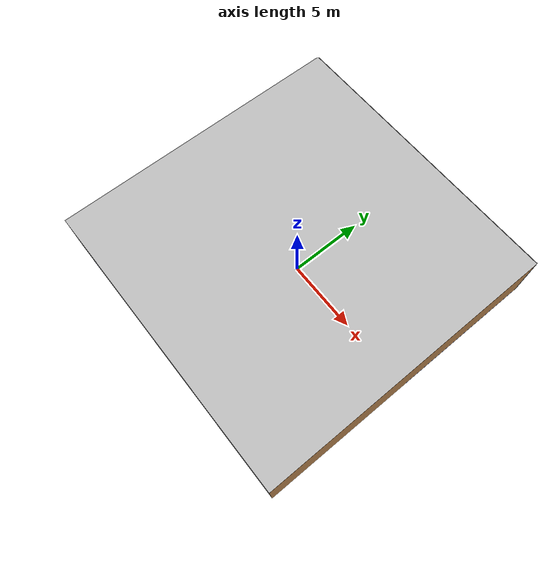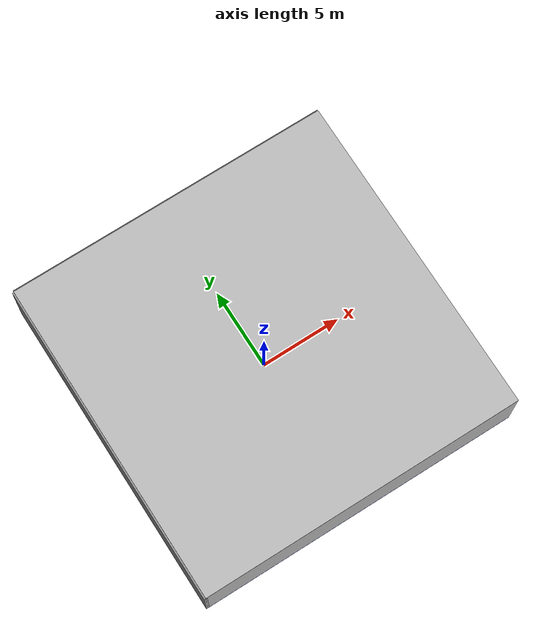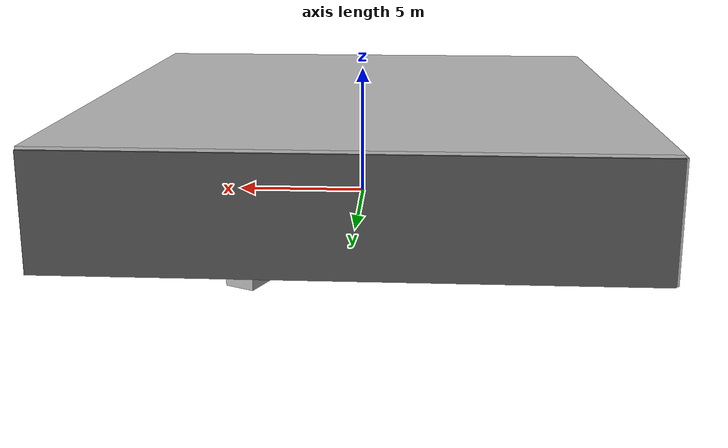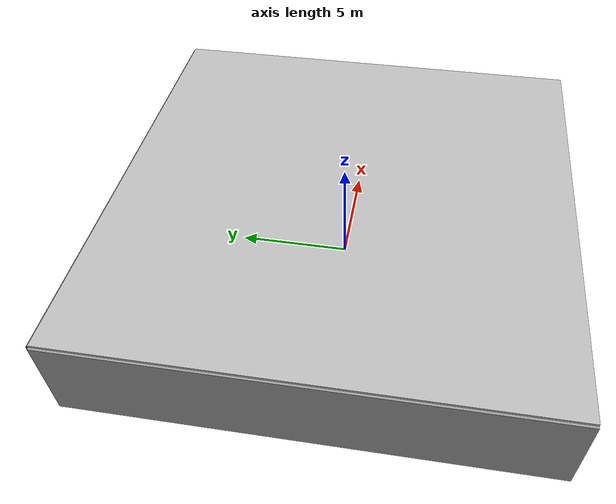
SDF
<sdf version="1.4">
 <world name="default">
  <physics type="ode">
   <max_step_size>0.001</max_step_size>
   <real_time_factor>1</real_time_factor>
   <real_time_update_rate>1000</real_time_update_rate>
   <gravity>0 0 -9.8</gravity>
  </physics>
  <scene><ambient>0.4 0.4 0.4 1</ambient><background>0.7 0.7 0.7 1</background><shadows>1</shadows></scene>
  <model name="Surrounding">
   <static>1</static>
   <link name="Ceiling">
    <collision name="Ceiling_Collision"><geometry><box><size>20 20 0.1</size></box></geometry></collision>
    <visual name="Ceiling_Visual">
     <geometry><box><size>20 20 0.1</size></box></geometry>
     <material>
      <script><uri>file://media/materials/scripts/gazebo.material</uri><name>Gazebo/LightOn</name></script>
     </material>
    </visual>
    <pose>0 0 4.05 0 0 0</pose>
   </link>
   <link name="Wall_South">
    <collision name="Wall_South_Collision">
     <geometry><box><size>20 0 4</size></box></geometry>
     <pose>0 0 2 0 -0 0</pose>
    </collision>
    <visual name="Wall_South_Visual">
     <pose>0 0 2 0 -0 0</pose>
     <geometry><box><size>20 0 4</size></box></geometry>
     <material>
      <script><uri>file://media/materials/scripts/gazebo.material</uri><name>Gazebo/PioneerBody</name></script>
     </material>
    </visual>
    <velocity_decay><linear>0</linear><angular>0</angular></velocity_decay>
    <pose>0 -10 0 0 -0 0</pose>
   </link>
   <link name="Wall_East">
    <collision name="Wall_21_Collision">
     <geometry><box><size>20 0 4</size></box></geometry>
     <pose>0 0 2 0 -0 0</pose>
    </collision>
    <visual name="Wall_21_Visual">
     <pose>0 0 2 0 -0 0</pose>
     <geometry><box><size>20 0 4</size></box></geometry>
     <material>
      <script><uri>file://media/materials/scripts/gazebo.material</uri><name>Gazebo/WoodFloor</name></script>
     </material>
    </visual>
    <velocity_decay><linear>0</linear><angular>0</angular></velocity_decay>
    <pose>10 0 0 0 -0 1.5708</pose>
   </link>
   <link name="Wall_North">
    <collision name="Wall_22_Collision">
     <geometry><box><size>20 0.2 4</size></box></geometry>
     <pose>0 0 2 0 -0 0</pose>
    </collision>
    <visual name="Wall_22_Visual">
     <pose>0 0 2 0 -0 0</pose>
     <geometry><box><size>20 0.2 4</size></box></geometry>
     <material>
      <script><uri>file://media/materials/scripts/gazebo.material</uri><name>Gazebo/DarkGrey</name></script>
     </material>
    </visual>
    <velocity_decay><linear>0</linear><angular>0</angular></velocity_decay>
    <pose>0 10 0 0 -0 0</pose>
   </link>
   <link name="Wall_West">
    <collision name="Wall_23_Collision">
     <geometry><box><size>20 0.2 4</size></box></geometry>
     <pose>0 0 2 0 -0 0</pose>
    </collision>
    <visual name="Wall_23_Visual">
     <pose>0 0 2 0 -0 0</pose>
     <geometry><box><size>20 0.2 4</size></box></geometry>
     <material>
      <script><uri>file://media/materials/scripts/gazebo.material</uri><name>Gazebo/Grey</name></script>
     </material>
    </visual>
    <velocity_decay><linear>0</linear><angular>0</angular></velocity_decay>
    <pose>-10 0 0 0 0 -1.5708</pose>
   </link>
   <link name="Ground_link">
    <collision name="collision">
     <pose>0 0 .05 0 -0 0</pose>
     <geometry><box><size>20 20 0.1</size></box></geometry>
    </collision>
    <visual name="visual">
     <pose>0 0 .05 0 -0 0</pose>
     <geometry><box><size>20 20 0.1</size></box></geometry>
     <material>
      <script><uri>file://media/materials/scripts/gazebo.material</uri><name>Gazebo/BlueGlow</name></script>
     </material>
    </visual>
   </link>
   <static>1</static>
  </model>
  <spherical_coordinates>
   <surface_model>EARTH_WGS84</surface_model>
   <latitude_deg>0</latitude_deg>
   <longitude_deg>0</longitude_deg>
   <elevation>0</elevation>
   <heading_deg>0</heading_deg>
  </spherical_coordinates>
  <light name="lightball_0" type="diffuse">
   <diffuse>0.8 0.8 0.8 1</diffuse>
   <specular>0.2 0.2 0.2 1</specular>
   <attenuation>
    <range>100</range>
    <constant>0.7</constant>
    <linear>0.01</linear>
    <quadratic>0.001</quadratic>
   </attenuation>
   <direction>-0.5 0.1 -0.9</direction>
   <pose>-3.0184488154 9.03135759927 2.9664902049 0 0 0</pose>
  </light>
  <light name="lightball_1" type="diffuse">
   <diffuse>0.8 0.8 0.8 1</diffuse>
   <specular>0.2 0.2 0.2 1</specular>
   <attenuation>
    <range>100</range>
    <constant>0.7</constant>
    <linear>0.01</linear>
    <quadratic>0.001</quadratic>
   </attenuation>
   <direction>-0.5 0.1 -0.9</direction>
   <pose>5.95924864484 -9.35271558392 3.76880888442 0 0 0</pose>
  </light>
  <light name="lightball_2" type="diffuse">
   <diffuse>0.8 0.8 0.8 1</diffuse>
   <specular>0.2 0.2 0.2 1</specular>
   <attenuation>
    <range>100</range>
    <constant>0.7</constant>
    <linear>0.01</linear>
    <quadratic>0.001</quadratic>
   </attenuation>
   <direction>-0.5 0.1 -0.9</direction>
   <pose>8.04980268052 3.82382396168 1.84983867926 0 0 0</pose>
  </light>
  <light name="lightball_3" type="diffuse">
   <diffuse>0.8 0.8 0.8 1</diffuse>
   <specular>0.2 0.2 0.2 1</specular>
   <attenuation>
    <range>100</range>
    <constant>0.7</constant>
    <linear>0.01</linear>
    <quadratic>0.001</quadratic>
   </attenuation>
   <direction>-0.5 0.1 -0.9</direction>
   <pose>6.29013860307 7.38245873191 2.61406359816 0 0 0</pose>
  </light>
  <light name="lightball_4" type="diffuse">
   <diffuse>0.8 0.8 0.8 1</diffuse>
   <specular>0.2 0.2 0.2 1</specular>
   <attenuation>
    <range>100</range>
    <constant>0.7</constant>
    <linear>0.01</linear>
    <quadratic>0.001</quadratic>
   </attenuation>
   <direction>-0.5 0.1 -0.9</direction>
   <pose>0.463916372183 -8.786740344 3.46500360237 0 0 0</pose>
  </light>
  <light name="lightball_5" type="diffuse">
   <diffuse>0.8 0.8 0.8 1</diffuse>
   <specular>0.2 0.2 0.2 1</specular>
   <attenuation>
    <range>100</range>
    <constant>0.7</constant>
    <linear>0.01</linear>
    <quadratic>0.001</quadratic>
   </attenuation>
   <direction>-0.5 0.1 -0.9</direction>
   <pose>-3.6358327823 2.52415549203 3.83644867239 0 0 0</pose>
  </light>
  <light name="lightball_6" type="diffuse">
   <diffuse>0.8 0.8 0.8 1</diffuse>
   <specular>0.2 0.2 0.2 1</specular>
   <attenuation>
    <range>100</range>
    <constant>0.7</constant>
    <linear>0.01</linear>
    <quadratic>0.001</quadratic>
   </attenuation>
   <direction>-0.5 0.1 -0.9</direction>
   <pose>5.59287193845 -2.81909752126 2.79670781761 0 0 0</pose>
  </light>
  <include><uri>model://table</uri><pose>-7.50882350397 6.92555094627 0 0 0 1.34325278868</pose></include>
  <include><uri>model://table</uri><pose>-0.976143277766 8.57553390966 0 0 0 1.82461229068</pose></include>
  <include><uri>model://table</uri><pose>1.56713397181 2.14724468029 0 0 0 0.0545711980265</pose></include>
  <include>
   <uri>model://textured_shapes</uri>
   <pose>2.5198338246 7.73510178428 0 0 0 2.71476137915</pose>
  </include>
  <include>
   <uri>model://robocup_3Dsim_goal</uri>
   <pose>6.85576094212 8.53190671886 0 0 0 1.39650448919</pose>
  </include>
 </world>
</sdf>

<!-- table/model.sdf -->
<sdf version="1.5">
  <model name="table">
    <static>true</static>
    <link name="link">
      <collision name="surface">
        <pose>0 0 1.0 0 0 0</pose>
        <geometry>
          <box>
            <size>1.5 0.8 0.03</size>
          </box>
        </geometry>
        <surface>
          <friction>
            <ode>
              <mu>0.6</mu>
              <mu2>0.6</mu2>
            </ode>
          </friction>
        </surface>
      </collision>
      <visual name="visual1">
        <pose>0 0 1.0 0 0 0</pose>
        <geometry>
          <box>
            <size>1.5 0.8 0.03</size>
          </box>
        </geometry>
        <material>
          <script>
            <uri>model://media/materials/scripts/gazebo.material</uri>
            <name>Gazebo/Wood</name>
          </script>
        </material>
      </visual>
      <collision name="front_left_leg">
        <pose>0.68 0.38 0.5 0 0 0</pose>
        <geometry>
          <cylinder>
            <radius>0.02</radius>
            <length>1.0</length>
          </cylinder>
        </geometry>
      </collision>
      <visual name="front_left_leg">
        <pose>0.68 0.38 0.5 0 0 0</pose>
        <geometry>
          <cylinder>
            <radius>0.02</radius>
            <length>1.0</length>
          </cylinder>
        </geometry>
        <material>
          <script>
            <uri>model://media/materials/scripts/gazebo.material</uri>
            <name>Gazebo/Grey</name>
          </script>
        </material>
      </visual>
      <collision name="front_right_leg">
        <pose>0.68 -0.38 0.5 0 0 0</pose>
        <geometry>
          <cylinder>
            <radius>0.02</radius>
            <length>1.0</length>
          </cylinder>
        </geometry>
      </collision>
      <visual name="front_right_leg">
        <pose>0.68 -0.38 0.5 0 0 0</pose>
        <geometry>
          <cylinder>
            <radius>0.02</radius>
            <length>1.0</length>
          </cylinder>
        </geometry>
        <material>
          <script>
            <uri>model://media/materials/scripts/gazebo.material</uri>
            <name>Gazebo/Grey</name>
          </script>
        </material>
      </visual>
      <collision name="back_right_leg">
        <pose>-0.68 -0.38 0.5 0 0 0</pose>
        <geometry>
          <cylinder>
            <radius>0.02</radius>
            <length>1.0</length>
          </cylinder>
        </geometry>
      </collision>
      <visual name="back_right_leg">
        <pose>-0.68 -0.38 0.5 0 0 0</pose>
        <geometry>
          <cylinder>
            <radius>0.02</radius>
            <length>1.0</length>
          </cylinder>
        </geometry>
        <material>
          <script>
            <uri>model://media/materials/scripts/gazebo.material</uri>
            <name>Gazebo/Grey</name>
          </script>
        </material>
      </visual>
      <collision name="back_left_leg">
        <pose>-0.68 0.38 0.5 0 0 0</pose>
        <geometry>
          <cylinder>
            <radius>0.02</radius>
            <length>1.0</length>
          </cylinder>
        </geometry>
      </collision>
      <visual name="back_left_leg">
        <pose>-0.68 0.38 0.5 0 0 0</pose>
        <geometry>
          <cylinder>
            <radius>0.02</radius>
            <length>1.0</length>
          </cylinder>
        </geometry>
        <material>
          <script>
            <uri>model://media/materials/scripts/gazebo.material</uri>
            <name>Gazebo/Grey</name>
          </script>
        </material>
      </visual>
    </link>
  </model>
</sdf>

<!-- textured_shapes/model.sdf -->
<sdf version="1.6">
  <model name="textured_shapes">
    <pose>0 0 0.5 0 0 0</pose>
    <link name="box">
      <pose>0 -1.5 0 0 0 0</pose>
      <collision name="collision">
        <geometry>
          <box>
            <size>1 1 1</size>
          </box>
        </geometry>
      </collision>
      <visual name="visual">
        <geometry>
          <box>
            <size>1 1 1</size>
          </box>
        </geometry>
        <material>
          <script>
            <uri>model://../model_source/models/textured_shapes/materials/scripts</uri>
            <uri>model://../model_source/models/textured_shapes/materials/textures</uri>
            <name>TexturedShape/Squares</name>
          </script>
        </material>
      </visual>
    </link>
    <link name="sphere">
      <collision name="collision">
        <geometry>
          <sphere>
            <radius>0.5</radius>
          </sphere>
        </geometry>
      </collision>
      <visual name="visual">
        <geometry>
          <sphere>
            <radius>0.5</radius>
          </sphere>
        </geometry>
        <material>
          <script>
            <uri>model://../model_source/models/textured_shapes/materials/scripts</uri>
            <uri>model://../model_source/models/textured_shapes/materials/textures</uri>
            <name>TexturedShape/Squares</name>
          </script>
        </material>
      </visual>
    </link>
    <link name="cylinder">
      <pose>0 1.5 0 0 0 0</pose>
      <collision name="collision">
        <geometry>
          <cylinder>
            <radius>0.5</radius>
            <length>1</length>
          </cylinder>
        </geometry>
      </collision>
      <visual name="visual">
        <geometry>
          <cylinder>
            <radius>0.5</radius>
            <length>1</length>
          </cylinder>
        </geometry>
        <material>
          <script>
            <uri>model://../model_source/models/textured_shapes/materials/scripts</uri>
            <uri>model://../model_source/models/textured_shapes/materials/textures</uri>
            <name>TexturedShape/Squares</name>
          </script>
        </material>
      </visual>
    </link>
  </model>
</sdf>

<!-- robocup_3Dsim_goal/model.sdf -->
<sdf version="1.5">
  <model name="robocup_3d_goal">
    <static>true</static>
    <link name="left_post">
      <pose>0 1.05 0.45 0 0 0</pose>
      <collision name="collision">
        <geometry>
          <cylinder>
            <radius>0.05</radius>
            <length>0.9</length>
          </cylinder>
        </geometry>
      </collision>
      <visual name="visual">
        <geometry>
          <cylinder>
            <radius>0.05</radius>
            <length>0.9</length>
          </cylinder>
        </geometry>
        <material>
          <script>
            <uri>file://media/materials/scripts/gazebo.material</uri>
            <name>Gazebo/ZincYellow</name>
          </script>
        </material>
      </visual>
    </link>
    <link name="left_support_horiz_lower">
      <pose>0.30 1.05 0.01 0 0 0</pose>
      <collision name="collision">
        <geometry>
          <box>
            <size>0.50 0.02 0.02</size>
          </box>
        </geometry>
      </collision>
      <visual name="visual">
        <geometry>
          <box>
            <size>0.50 0.02 0.02</size>
          </box>
        </geometry>
        <material>
          <script>
            <uri>file://media/materials/scripts/gazebo.material</uri>
            <name>Gazebo/White</name>
          </script>
        </material>
      </visual>
    </link>
    <link name="left_support_horiz_upper">
      <pose>0.30 1.05 0.79 0 0 0</pose>
      <collision name="collision">
        <geometry>
          <box>
            <size>0.50 0.02 0.02</size>
          </box>
        </geometry>
      </collision>
      <visual name="visual">
        <geometry>
          <box>
            <size>0.50 0.02 0.02</size>
          </box>
        </geometry>
        <material>
          <script>
            <uri>file://media/materials/scripts/gazebo.material</uri>
            <name>Gazebo/White</name>
          </script>
        </material>
      </visual>
    </link>
    <link name="left_support_vertical">
      <pose>0.56 1.05 0.4 0 1.5708 0</pose>
      <collision name="collision">
        <geometry>
          <box>
            <size>0.80 0.02 0.02</size>
          </box>
        </geometry>
      </collision>
      <visual name="visual">
        <geometry>
          <box>
            <size>0.80 0.02 0.02</size>
          </box>
        </geometry>
        <material>
          <script>
            <uri>file://media/materials/scripts/gazebo.material</uri>
            <name>Gazebo/White</name>
          </script>
        </material>
      </visual>
    </link>
    <link name="right_support_horiz_lower">
      <pose>0.30 -1.05 0.01 0 0 0</pose>
      <collision name="collision">
        <geometry>
          <box>
            <size>0.50 0.02 0.02</size>
          </box>
        </geometry>
      </collision>
      <visual name="visual">
        <geometry>
          <box>
            <size>0.50 0.02 0.02</size>
          </box>
        </geometry>
        <material>
          <script>
            <uri>file://media/materials/scripts/gazebo.material</uri>
            <name>Gazebo/White</name>
          </script>
        </material>
      </visual>
    </link>
    <link name="right_support_horiz_upper">
      <pose>0.30 -1.05 0.79 0 0 0</pose>
      <collision name="collision">
        <geometry>
          <box>
            <size>0.50 0.02 0.02</size>
          </box>
        </geometry>
      </collision>
      <visual name="visual">
        <geometry>
          <box>
            <size>0.50 0.02 0.02</size>
          </box>
        </geometry>
        <material>
          <script>
            <uri>file://media/materials/scripts/gazebo.material</uri>
            <name>Gazebo/White</name>
          </script>
        </material>
      </visual>
    </link>
    <link name="right_support_vertical">
      <pose>0.56 -1.05 0.4 0 1.5708 0</pose>
      <collision name="collision">
        <geometry>
          <box>
            <size>0.80 0.02 0.02</size>
          </box>
        </geometry>
      </collision>
      <visual name="visual">
        <geometry>
          <box>
            <size>0.80 0.02 0.02</size>
          </box>
        </geometry>
        <material>
          <script>
            <uri>file://media/materials/scripts/gazebo.material</uri>
            <name>Gazebo/White</name>
          </script>
        </material>
      </visual>
    </link>
    <link name="center_support_horiz_lower">
      <pose>0.56 0 0.01 0 1.5708 0</pose>
      <collision name="collision">
        <geometry>
          <box>
            <size>0.02 2.08 0.02</size>
          </box>
        </geometry>
      </collision>
      <visual name="visual">
        <geometry>
          <box>
            <size>0.02 2.08 0.02</size>
          </box>
        </geometry>
        <material>
          <script>
            <uri>file://media/materials/scripts/gazebo.material</uri>
            <name>Gazebo/White</name>
          </script>
        </material>
      </visual>
    </link>
    <link name="center_support_horiz_upper">
      <pose>0.56 0 0.79 0 1.5708 0</pose>
      <collision name="collision">
        <geometry>
          <box>
            <size>0.02 2.08 0.02</size>
          </box>
        </geometry>
      </collision>
      <visual name="visual">
        <geometry>
          <box>
            <size>0.02 2.08 0.02</size>
          </box>
        </geometry>
        <material>
          <script>
            <uri>file://media/materials/scripts/gazebo.material</uri>
            <name>Gazebo/White</name>
          </script>
        </material>
      </visual>
    </link>
    <link name="right_post">
      <pose>0 -1.05 0.45 0 0 0</pose>
      <collision name="collision">
        <geometry>
          <cylinder>
            <radius>0.05</radius>
            <length>0.9</length>
          </cylinder>
        </geometry>
      </collision>
      <visual name="visual">
        <geometry>
          <cylinder>
            <radius>0.05</radius>
            <length>0.9</length>
          </cylinder>
        </geometry>
        <material>
          <script>
            <uri>file://media/materials/scripts/gazebo.material</uri>
            <name>Gazebo/ZincYellow</name>
          </script>
        </material>
      </visual>
    </link>
    <link name="crossbar">
      <pose>0 0 0.85 1.57 1.57 0</pose>
      <collision name="collision">
        <geometry>
          <cylinder>
            <radius>0.05</radius>
            <length>2.0</length>
          </cylinder>
        </geometry>
      </collision>
      <visual name="visual">
        <geometry>
          <cylinder>
            <radius>0.05</radius>
            <length>2.0</length>
          </cylinder>
        </geometry>
        <material>
          <script>
            <uri>file://media/materials/scripts/gazebo.material</uri>
            <name>Gazebo/ZincYellow</name>
          </script>
        </material>
      </visual>
    </link>
    <link name="center_net">
      <pose>0.56 0 0.40 0 0 0</pose>
      <collision name="collision">
        <geometry>
          <box>
            <size>0.01 2.1 0.80</size>
          </box>
        </geometry>
      </collision>
      <visual name="visual">
        <geometry>
          <box>
            <size>0.01 2.1 0.80</size>
          </box>
        </geometry>
        <material>
          <script>
            <uri>model://../model_source/models/robocup09_spl_field/materials/scripts/</uri>
            <uri>model://../model_source/models/robocup09_spl_field/materials/textures/</uri>
            <name>RoboCup/Net</name>
          </script>
        </material>
      </visual>
    </link>
    <link name="left_net">
      <pose>0.30 1.05 0.40 0 0 0</pose>
      <collision name="collision">
        <geometry>
          <box>
            <size>0.50 0.01 0.76</size>
          </box>
        </geometry>
      </collision>
      <visual name="visual">
        <geometry>
          <box>
            <size>0.50 0.01 0.76</size>
          </box>
        </geometry>
        <material>
          <script>
            <uri>model://../model_source/models/robocup09_spl_field/materials/scripts/</uri>
            <uri>model://../model_source/models/robocup09_spl_field/materials/textures/</uri>
            <name>RoboCup/Net</name>
          </script>
        </material>
      </visual>
    </link>
    <link name="right_net">
      <pose>0.30 -1.05 0.40 0 0 0</pose>
      <collision name="collision">
        <geometry>
          <box>
            <size>0.50 0.01 0.76</size>
          </box>
        </geometry>
      </collision>
      <visual name="visual">
        <geometry>
          <box>
            <size>0.50 0.01 0.76</size>
          </box>
        </geometry>
        <material>
          <script>
            <uri>model://../model_source/models/robocup09_spl_field/materials/scripts/</uri>
            <uri>model://../model_source/models/robocup09_spl_field/materials/textures/</uri>
            <name>RoboCup/Net</name>
          </script>
        </material>
      </visual>
    </link>
  </model>
</sdf>
